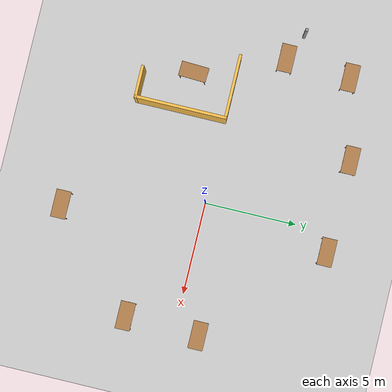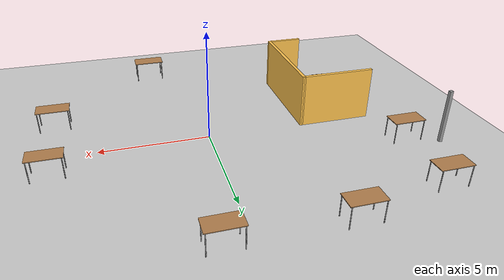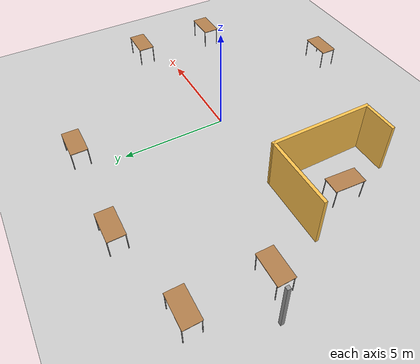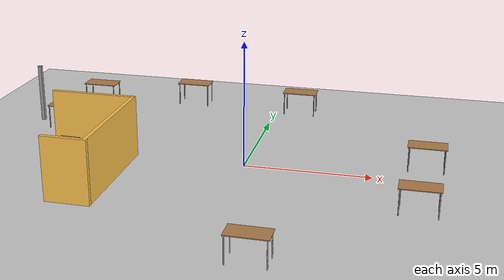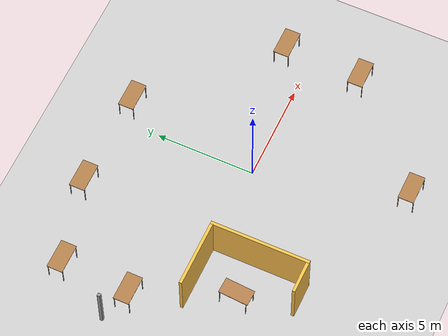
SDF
<sdf version="1.6">
 <world name="default">
  <model name="ground_plane">
   <static>1</static>
   <link name="link">
    <collision name="collision">
     <geometry><plane><normal>0 0 1</normal><size>100 100</size></plane></geometry>
     <surface>
      <contact><collide_bitmask>65535</collide_bitmask></contact>
      <friction><ode><mu>100</mu><mu2>50</mu2></ode></friction>
     </surface>
    </collision>
    <visual name="visual">
     <cast_shadows>0</cast_shadows>
     <geometry><plane><normal>0 0 1</normal><size>100 100</size></plane></geometry>
     <material>
      <script><uri>file://media/materials/scripts/gazebo.material</uri><name>Gazebo/Grey</name></script>
     </material>
    </visual>
   </link>
  </model>
  <model name="model_0">
   <pose>-7.249 -0.8735 0 0 -0 0</pose>
   <link name="Wall_66">
    <collision name="Wall_66_Collision">
     <geometry><box><size>0.15 0.15 2.5</size></box></geometry>
     <pose>0 0 1.25 0 -0 0</pose>
    </collision>
    <visual name="Wall_66_Visual">
     <pose>0 0 1.25 0 -0 0</pose>
     <geometry><box><size>0.15 0.15 2.5</size></box></geometry>
     <material>
      <script><uri>file://media/materials/scripts/gazebo.material</uri><name>Gazebo/Grey</name></script>
      <ambient>1 1 1 1</ambient>
     </material>
     <meta><layer>0</layer></meta>
    </visual>
    <pose>-2.751 3.9665 0 0 -0 0</pose>
   </link>
   <link name="Wall_67">
    <collision name="Wall_67_Collision">
     <geometry><box><size>3.5 0.15 2.5</size></box></geometry>
     <pose>0 0 1.25 0 -0 0</pose>
    </collision>
    <visual name="Wall_67_Visual">
     <pose>0 0 1.25 0 -0 0</pose>
     <geometry><box><size>3.5 0.15 2.5</size></box></geometry>
     <material>
      <script><uri>file://media/materials/scripts/gazebo.material</uri><name>Gazebo/Grey</name></script>
      <ambient>1 0.764706 0.305882 1</ambient>
     </material>
     <meta><layer>0</layer></meta>
    </visual>
    <pose>1.07582 0.883336 0 0 -0 9.8e-05</pose>
   </link>
   <link name="Wall_72">
    <collision name="Wall_72_Collision">
     <geometry><box><size>5 0.15 2.5</size></box></geometry>
     <pose>0 0 1.25 0 -0 0</pose>
    </collision>
    <visual name="Wall_72_Visual">
     <pose>0 0 1.25 0 -0 0</pose>
     <geometry><box><size>5 0.15 2.5</size></box></geometry>
     <material>
      <script><uri>file://media/materials/scripts/gazebo.material</uri><name>Gazebo/Grey</name></script>
      <ambient>1 0.764706 0.305882 1</ambient>
     </material>
     <meta><layer>0</layer></meta>
    </visual>
    <pose>2.751 -1.5415 0 0 -0 -1.5708</pose>
   </link>
   <link name="Wall_73">
    <collision name="Wall_73_Collision">
     <geometry><box><size>1.75 0.15 2.5</size></box></geometry>
     <pose>0 0 1.25 0 -0 0</pose>
    </collision>
    <visual name="Wall_73_Visual">
     <pose>0 0 1.25 0 -0 0</pose>
     <geometry><box><size>1.75 0.15 2.5</size></box></geometry>
     <material>
      <script><uri>file://media/materials/scripts/gazebo.material</uri><name>Gazebo/Grey</name></script>
      <ambient>1 0.764706 0.305882 1</ambient>
     </material>
     <meta><layer>0</layer></meta>
    </visual>
    <pose>1.951 -3.9665 0 0 -0 3.14159</pose>
   </link>
   <static>1</static>
  </model>
  <model name="model_2">
   <model name="table">
    <static>1</static>
    <link name="link">
     <collision name="surface">
      <pose>0 0 1 0 -0 0</pose>
      <geometry><box><size>1.5 0.8 0.03</size></box></geometry>
      <surface><friction><ode><mu>0.6</mu><mu2>0.6</mu2></ode></friction></surface>
     </collision>
     <visual name="visual1">
      <pose>0 0 1 0 -0 0</pose>
      <geometry><box><size>1.5 0.8 0.03</size></box></geometry>
      <material>
       <script><uri>file://media/materials/scripts/gazebo.material</uri><name>Gazebo/Wood</name></script>
      </material>
     </visual>
     <collision name="front_left_leg">
      <pose>0.68 0.38 0.5 0 -0 0</pose>
      <geometry><cylinder><radius>0.02</radius><length>1</length></cylinder></geometry>
     </collision>
     <visual name="front_left_leg">
      <pose>0.68 0.38 0.5 0 -0 0</pose>
      <geometry><cylinder><radius>0.02</radius><length>1</length></cylinder></geometry>
      <material>
       <script><uri>file://media/materials/scripts/gazebo.material</uri><name>Gazebo/Grey</name></script>
      </material>
     </visual>
     <collision name="front_right_leg">
      <pose>0.68 -0.38 0.5 0 -0 0</pose>
      <geometry><cylinder><radius>0.02</radius><length>1</length></cylinder></geometry>
     </collision>
     <visual name="front_right_leg">
      <pose>0.68 -0.38 0.5 0 -0 0</pose>
      <geometry><cylinder><radius>0.02</radius><length>1</length></cylinder></geometry>
      <material>
       <script><uri>file://media/materials/scripts/gazebo.material</uri><name>Gazebo/Grey</name></script>
      </material>
     </visual>
     <collision name="back_right_leg">
      <pose>-0.68 -0.38 0.5 0 -0 0</pose>
      <geometry><cylinder><radius>0.02</radius><length>1</length></cylinder></geometry>
     </collision>
     <visual name="back_right_leg">
      <pose>-0.68 -0.38 0.5 0 -0 0</pose>
      <geometry><cylinder><radius>0.02</radius><length>1</length></cylinder></geometry>
      <material>
       <script><uri>file://media/materials/scripts/gazebo.material</uri><name>Gazebo/Grey</name></script>
      </material>
     </visual>
     <collision name="back_left_leg">
      <pose>-0.68 0.38 0.5 0 -0 0</pose>
      <geometry><cylinder><radius>0.02</radius><length>1</length></cylinder></geometry>
     </collision>
     <visual name="back_left_leg">
      <pose>-0.68 0.38 0.5 0 -0 0</pose>
      <geometry><cylinder><radius>0.02</radius><length>1</length></cylinder></geometry>
      <material>
       <script><uri>file://media/materials/scripts/gazebo.material</uri><name>Gazebo/Grey</name></script>
      </material>
     </visual>
    </link>
    <pose>-7.17173 1.02852 0.005879 0 -0 0</pose>
   </model>
   <model name="table_clone">
    <static>1</static>
    <link name="link">
     <collision name="surface">
      <pose>0 0 1 0 -0 0</pose>
      <geometry><box><size>1.5 0.8 0.03</size></box></geometry>
      <surface><friction><ode><mu>0.6</mu><mu2>0.6</mu2></ode></friction></surface>
     </collision>
     <visual name="visual1">
      <pose>0 0 1 0 -0 0</pose>
      <geometry><box><size>1.5 0.8 0.03</size></box></geometry>
      <material>
       <script><uri>file://media/materials/scripts/gazebo.material</uri><name>Gazebo/Wood</name></script>
      </material>
     </visual>
     <collision name="front_left_leg">
      <pose>0.68 0.38 0.5 0 -0 0</pose>
      <geometry><cylinder><radius>0.02</radius><length>1</length></cylinder></geometry>
     </collision>
     <visual name="front_left_leg">
      <pose>0.68 0.38 0.5 0 -0 0</pose>
      <geometry><cylinder><radius>0.02</radius><length>1</length></cylinder></geometry>
      <material>
       <script><uri>file://media/materials/scripts/gazebo.material</uri><name>Gazebo/Grey</name></script>
      </material>
     </visual>
     <collision name="front_right_leg">
      <pose>0.68 -0.38 0.5 0 -0 0</pose>
      <geometry><cylinder><radius>0.02</radius><length>1</length></cylinder></geometry>
     </collision>
     <visual name="front_right_leg">
      <pose>0.68 -0.38 0.5 0 -0 0</pose>
      <geometry><cylinder><radius>0.02</radius><length>1</length></cylinder></geometry>
      <material>
       <script><uri>file://media/materials/scripts/gazebo.material</uri><name>Gazebo/Grey</name></script>
      </material>
     </visual>
     <collision name="back_right_leg">
      <pose>-0.68 -0.38 0.5 0 -0 0</pose>
      <geometry><cylinder><radius>0.02</radius><length>1</length></cylinder></geometry>
     </collision>
     <visual name="back_right_leg">
      <pose>-0.68 -0.38 0.5 0 -0 0</pose>
      <geometry><cylinder><radius>0.02</radius><length>1</length></cylinder></geometry>
      <material>
       <script><uri>file://media/materials/scripts/gazebo.material</uri><name>Gazebo/Grey</name></script>
      </material>
     </visual>
     <collision name="back_left_leg">
      <pose>-0.68 0.38 0.5 0 -0 0</pose>
      <geometry><cylinder><radius>0.02</radius><length>1</length></cylinder></geometry>
     </collision>
     <visual name="back_left_leg">
      <pose>-0.68 0.38 0.5 0 -0 0</pose>
      <geometry><cylinder><radius>0.02</radius><length>1</length></cylinder></geometry>
      <material>
       <script><uri>file://media/materials/scripts/gazebo.material</uri><name>Gazebo/Grey</name></script>
      </material>
     </visual>
    </link>
    <pose>-6.95127 4.56782 -0.033972 0 -0 0</pose>
   </model>
   <model name="table_clone_0">
    <static>1</static>
    <link name="link">
     <collision name="surface">
      <pose>0 0 1 0 -0 0</pose>
      <geometry><box><size>1.5 0.8 0.03</size></box></geometry>
      <surface><friction><ode><mu>0.6</mu><mu2>0.6</mu2></ode></friction></surface>
     </collision>
     <visual name="visual1">
      <pose>0 0 1 0 -0 0</pose>
      <geometry><box><size>1.5 0.8 0.03</size></box></geometry>
      <material>
       <script><uri>file://media/materials/scripts/gazebo.material</uri><name>Gazebo/Wood</name></script>
      </material>
     </visual>
     <collision name="front_left_leg">
      <pose>0.68 0.38 0.5 0 -0 0</pose>
      <geometry><cylinder><radius>0.02</radius><length>1</length></cylinder></geometry>
     </collision>
     <visual name="front_left_leg">
      <pose>0.68 0.38 0.5 0 -0 0</pose>
      <geometry><cylinder><radius>0.02</radius><length>1</length></cylinder></geometry>
      <material>
       <script><uri>file://media/materials/scripts/gazebo.material</uri><name>Gazebo/Grey</name></script>
      </material>
     </visual>
     <collision name="front_right_leg">
      <pose>0.68 -0.38 0.5 0 -0 0</pose>
      <geometry><cylinder><radius>0.02</radius><length>1</length></cylinder></geometry>
     </collision>
     <visual name="front_right_leg">
      <pose>0.68 -0.38 0.5 0 -0 0</pose>
      <geometry><cylinder><radius>0.02</radius><length>1</length></cylinder></geometry>
      <material>
       <script><uri>file://media/materials/scripts/gazebo.material</uri><name>Gazebo/Grey</name></script>
      </material>
     </visual>
     <collision name="back_right_leg">
      <pose>-0.68 -0.38 0.5 0 -0 0</pose>
      <geometry><cylinder><radius>0.02</radius><length>1</length></cylinder></geometry>
     </collision>
     <visual name="back_right_leg">
      <pose>-0.68 -0.38 0.5 0 -0 0</pose>
      <geometry><cylinder><radius>0.02</radius><length>1</length></cylinder></geometry>
      <material>
       <script><uri>file://media/materials/scripts/gazebo.material</uri><name>Gazebo/Grey</name></script>
      </material>
     </visual>
     <collision name="back_left_leg">
      <pose>-0.68 0.38 0.5 0 -0 0</pose>
      <geometry><cylinder><radius>0.02</radius><length>1</length></cylinder></geometry>
     </collision>
     <visual name="back_left_leg">
      <pose>-0.68 0.38 0.5 0 -0 0</pose>
      <geometry><cylinder><radius>0.02</radius><length>1</length></cylinder></geometry>
      <material>
       <script><uri>file://media/materials/scripts/gazebo.material</uri><name>Gazebo/Grey</name></script>
      </material>
     </visual>
    </link>
    <pose>-5.29399 -3.59772 0.095578 0.00162 -0.033332 1.52222</pose>
   </model>
   <model name="table_clone_1">
    <static>1</static>
    <link name="link">
     <collision name="surface">
      <pose>0 0 1 0 -0 0</pose>
      <geometry><box><size>1.5 0.8 0.03</size></box></geometry>
      <surface><friction><ode><mu>0.6</mu><mu2>0.6</mu2></ode></friction></surface>
     </collision>
     <visual name="visual1">
      <pose>0 0 1 0 -0 0</pose>
      <geometry><box><size>1.5 0.8 0.03</size></box></geometry>
      <material>
       <script><uri>file://media/materials/scripts/gazebo.material</uri><name>Gazebo/Wood</name></script>
      </material>
     </visual>
     <collision name="front_left_leg">
      <pose>0.68 0.38 0.5 0 -0 0</pose>
      <geometry><cylinder><radius>0.02</radius><length>1</length></cylinder></geometry>
     </collision>
     <visual name="front_left_leg">
      <pose>0.68 0.38 0.5 0 -0 0</pose>
      <geometry><cylinder><radius>0.02</radius><length>1</length></cylinder></geometry>
      <material>
       <script><uri>file://media/materials/scripts/gazebo.material</uri><name>Gazebo/Grey</name></script>
      </material>
     </visual>
     <collision name="front_right_leg">
      <pose>0.68 -0.38 0.5 0 -0 0</pose>
      <geometry><cylinder><radius>0.02</radius><length>1</length></cylinder></geometry>
     </collision>
     <visual name="front_right_leg">
      <pose>0.68 -0.38 0.5 0 -0 0</pose>
      <geometry><cylinder><radius>0.02</radius><length>1</length></cylinder></geometry>
      <material>
       <script><uri>file://media/materials/scripts/gazebo.material</uri><name>Gazebo/Grey</name></script>
      </material>
     </visual>
     <collision name="back_right_leg">
      <pose>-0.68 -0.38 0.5 0 -0 0</pose>
      <geometry><cylinder><radius>0.02</radius><length>1</length></cylinder></geometry>
     </collision>
     <visual name="back_right_leg">
      <pose>-0.68 -0.38 0.5 0 -0 0</pose>
      <geometry><cylinder><radius>0.02</radius><length>1</length></cylinder></geometry>
      <material>
       <script><uri>file://media/materials/scripts/gazebo.material</uri><name>Gazebo/Grey</name></script>
      </material>
     </visual>
     <collision name="back_left_leg">
      <pose>-0.68 0.38 0.5 0 -0 0</pose>
      <geometry><cylinder><radius>0.02</radius><length>1</length></cylinder></geometry>
     </collision>
     <visual name="back_left_leg">
      <pose>-0.68 0.38 0.5 0 -0 0</pose>
      <geometry><cylinder><radius>0.02</radius><length>1</length></cylinder></geometry>
      <material>
       <script><uri>file://media/materials/scripts/gazebo.material</uri><name>Gazebo/Grey</name></script>
      </material>
     </visual>
    </link>
    <pose>8.16305 -4.11748 0.005879 0 -0 0</pose>
   </model>
   <model name="table_clone_1_clone">
    <static>1</static>
    <link name="link">
     <collision name="surface">
      <pose>0 0 1 0 -0 0</pose>
      <geometry><box><size>1.5 0.8 0.03</size></box></geometry>
      <surface><friction><ode><mu>0.6</mu><mu2>0.6</mu2></ode></friction></surface>
     </collision>
     <visual name="visual1">
      <pose>0 0 1 0 -0 0</pose>
      <geometry><box><size>1.5 0.8 0.03</size></box></geometry>
      <material>
       <script><uri>file://media/materials/scripts/gazebo.material</uri><name>Gazebo/Wood</name></script>
      </material>
     </visual>
     <collision name="front_left_leg">
      <pose>0.68 0.38 0.5 0 -0 0</pose>
      <geometry><cylinder><radius>0.02</radius><length>1</length></cylinder></geometry>
     </collision>
     <visual name="front_left_leg">
      <pose>0.68 0.38 0.5 0 -0 0</pose>
      <geometry><cylinder><radius>0.02</radius><length>1</length></cylinder></geometry>
      <material>
       <script><uri>file://media/materials/scripts/gazebo.material</uri><name>Gazebo/Grey</name></script>
      </material>
     </visual>
     <collision name="front_right_leg">
      <pose>0.68 -0.38 0.5 0 -0 0</pose>
      <geometry><cylinder><radius>0.02</radius><length>1</length></cylinder></geometry>
     </collision>
     <visual name="front_right_leg">
      <pose>0.68 -0.38 0.5 0 -0 0</pose>
      <geometry><cylinder><radius>0.02</radius><length>1</length></cylinder></geometry>
      <material>
       <script><uri>file://media/materials/scripts/gazebo.material</uri><name>Gazebo/Grey</name></script>
      </material>
     </visual>
     <collision name="back_right_leg">
      <pose>-0.68 -0.38 0.5 0 -0 0</pose>
      <geometry><cylinder><radius>0.02</radius><length>1</length></cylinder></geometry>
     </collision>
     <visual name="back_right_leg">
      <pose>-0.68 -0.38 0.5 0 -0 0</pose>
      <geometry><cylinder><radius>0.02</radius><length>1</length></cylinder></geometry>
      <material>
       <script><uri>file://media/materials/scripts/gazebo.material</uri><name>Gazebo/Grey</name></script>
      </material>
     </visual>
     <collision name="back_left_leg">
      <pose>-0.68 0.38 0.5 0 -0 0</pose>
      <geometry><cylinder><radius>0.02</radius><length>1</length></cylinder></geometry>
     </collision>
     <visual name="back_left_leg">
      <pose>-0.68 0.38 0.5 0 -0 0</pose>
      <geometry><cylinder><radius>0.02</radius><length>1</length></cylinder></geometry>
      <material>
       <script><uri>file://media/materials/scripts/gazebo.material</uri><name>Gazebo/Grey</name></script>
      </material>
     </visual>
    </link>
    <pose>8.28303 -0.127677 -0.007262 0 -0 0</pose>
   </model>
   <model name="table_clone_1_clone_0">
    <static>1</static>
    <link name="link">
     <collision name="surface">
      <pose>0 0 1 0 -0 0</pose>
      <geometry><box><size>1.5 0.8 0.03</size></box></geometry>
      <surface><friction><ode><mu>0.6</mu><mu2>0.6</mu2></ode></friction></surface>
     </collision>
     <visual name="visual1">
      <pose>0 0 1 0 -0 0</pose>
      <geometry><box><size>1.5 0.8 0.03</size></box></geometry>
      <material>
       <script><uri>file://media/materials/scripts/gazebo.material</uri><name>Gazebo/Wood</name></script>
      </material>
     </visual>
     <collision name="front_left_leg">
      <pose>0.68 0.38 0.5 0 -0 0</pose>
      <geometry><cylinder><radius>0.02</radius><length>1</length></cylinder></geometry>
     </collision>
     <visual name="front_left_leg">
      <pose>0.68 0.38 0.5 0 -0 0</pose>
      <geometry><cylinder><radius>0.02</radius><length>1</length></cylinder></geometry>
      <material>
       <script><uri>file://media/materials/scripts/gazebo.material</uri><name>Gazebo/Grey</name></script>
      </material>
     </visual>
     <collision name="front_right_leg">
      <pose>0.68 -0.38 0.5 0 -0 0</pose>
      <geometry><cylinder><radius>0.02</radius><length>1</length></cylinder></geometry>
     </collision>
     <visual name="front_right_leg">
      <pose>0.68 -0.38 0.5 0 -0 0</pose>
      <geometry><cylinder><radius>0.02</radius><length>1</length></cylinder></geometry>
      <material>
       <script><uri>file://media/materials/scripts/gazebo.material</uri><name>Gazebo/Grey</name></script>
      </material>
     </visual>
     <collision name="back_right_leg">
      <pose>-0.68 -0.38 0.5 0 -0 0</pose>
      <geometry><cylinder><radius>0.02</radius><length>1</length></cylinder></geometry>
     </collision>
     <visual name="back_right_leg">
      <pose>-0.68 -0.38 0.5 0 -0 0</pose>
      <geometry><cylinder><radius>0.02</radius><length>1</length></cylinder></geometry>
      <material>
       <script><uri>file://media/materials/scripts/gazebo.material</uri><name>Gazebo/Grey</name></script>
      </material>
     </visual>
     <collision name="back_left_leg">
      <pose>-0.68 0.38 0.5 0 -0 0</pose>
      <geometry><cylinder><radius>0.02</radius><length>1</length></cylinder></geometry>
     </collision>
     <visual name="back_left_leg">
      <pose>-0.68 0.38 0.5 0 -0 0</pose>
      <geometry><cylinder><radius>0.02</radius><length>1</length></cylinder></geometry>
      <material>
       <script><uri>file://media/materials/scripts/gazebo.material</uri><name>Gazebo/Grey</name></script>
      </material>
     </visual>
    </link>
    <pose>2.40207 5.49447 -0.059796 0 -0 0</pose>
   </model>
   <model name="table_clone_1_clone_1">
    <static>1</static>
    <link name="link">
     <collision name="surface">
      <pose>0 0 1 0 -0 0</pose>
      <geometry><box><size>1.5 0.8 0.03</size></box></geometry>
      <surface><friction><ode><mu>0.6</mu><mu2>0.6</mu2></ode></friction></surface>
     </collision>
     <visual name="visual1">
      <pose>0 0 1 0 -0 0</pose>
      <geometry><box><size>1.5 0.8 0.03</size></box></geometry>
      <material>
       <script><uri>file://media/materials/scripts/gazebo.material</uri><name>Gazebo/Wood</name></script>
      </material>
     </visual>
     <collision name="front_left_leg">
      <pose>0.68 0.38 0.5 0 -0 0</pose>
      <geometry><cylinder><radius>0.02</radius><length>1</length></cylinder></geometry>
     </collision>
     <visual name="front_left_leg">
      <pose>0.68 0.38 0.5 0 -0 0</pose>
      <geometry><cylinder><radius>0.02</radius><length>1</length></cylinder></geometry>
      <material>
       <script><uri>file://media/materials/scripts/gazebo.material</uri><name>Gazebo/Grey</name></script>
      </material>
     </visual>
     <collision name="front_right_leg">
      <pose>0.68 -0.38 0.5 0 -0 0</pose>
      <geometry><cylinder><radius>0.02</radius><length>1</length></cylinder></geometry>
     </collision>
     <visual name="front_right_leg">
      <pose>0.68 -0.38 0.5 0 -0 0</pose>
      <geometry><cylinder><radius>0.02</radius><length>1</length></cylinder></geometry>
      <material>
       <script><uri>file://media/materials/scripts/gazebo.material</uri><name>Gazebo/Grey</name></script>
      </material>
     </visual>
     <collision name="back_right_leg">
      <pose>-0.68 -0.38 0.5 0 -0 0</pose>
      <geometry><cylinder><radius>0.02</radius><length>1</length></cylinder></geometry>
     </collision>
     <visual name="back_right_leg">
      <pose>-0.68 -0.38 0.5 0 -0 0</pose>
      <geometry><cylinder><radius>0.02</radius><length>1</length></cylinder></geometry>
      <material>
       <script><uri>file://media/materials/scripts/gazebo.material</uri><name>Gazebo/Grey</name></script>
      </material>
     </visual>
     <collision name="back_left_leg">
      <pose>-0.68 0.38 0.5 0 -0 0</pose>
      <geometry><cylinder><radius>0.02</radius><length>1</length></cylinder></geometry>
     </collision>
     <visual name="back_left_leg">
      <pose>-0.68 0.38 0.5 0 -0 0</pose>
      <geometry><cylinder><radius>0.02</radius><length>1</length></cylinder></geometry>
      <material>
       <script><uri>file://media/materials/scripts/gazebo.material</uri><name>Gazebo/Grey</name></script>
      </material>
     </visual>
    </link>
    <pose>-2.64428 5.59611 -0.012185 0 -0 0</pose>
   </model>
   <model name="table_clone_1_clone_2">
    <static>1</static>
    <link name="link">
     <collision name="surface">
      <pose>0 0 1 0 -0 0</pose>
      <geometry><box><size>1.5 0.8 0.03</size></box></geometry>
      <surface><friction><ode><mu>0.6</mu><mu2>0.6</mu2></ode></friction></surface>
     </collision>
     <visual name="visual1">
      <pose>0 0 1 0 -0 0</pose>
      <geometry><box><size>1.5 0.8 0.03</size></box></geometry>
      <material>
       <script><uri>file://media/materials/scripts/gazebo.material</uri><name>Gazebo/Wood</name></script>
      </material>
     </visual>
     <collision name="front_left_leg">
      <pose>0.68 0.38 0.5 0 -0 0</pose>
      <geometry><cylinder><radius>0.02</radius><length>1</length></cylinder></geometry>
     </collision>
     <visual name="front_left_leg">
      <pose>0.68 0.38 0.5 0 -0 0</pose>
      <geometry><cylinder><radius>0.02</radius><length>1</length></cylinder></geometry>
      <material>
       <script><uri>file://media/materials/scripts/gazebo.material</uri><name>Gazebo/Grey</name></script>
      </material>
     </visual>
     <collision name="front_right_leg">
      <pose>0.68 -0.38 0.5 0 -0 0</pose>
      <geometry><cylinder><radius>0.02</radius><length>1</length></cylinder></geometry>
     </collision>
     <visual name="front_right_leg">
      <pose>0.68 -0.38 0.5 0 -0 0</pose>
      <geometry><cylinder><radius>0.02</radius><length>1</length></cylinder></geometry>
      <material>
       <script><uri>file://media/materials/scripts/gazebo.material</uri><name>Gazebo/Grey</name></script>
      </material>
     </visual>
     <collision name="back_right_leg">
      <pose>-0.68 -0.38 0.5 0 -0 0</pose>
      <geometry><cylinder><radius>0.02</radius><length>1</length></cylinder></geometry>
     </collision>
     <visual name="back_right_leg">
      <pose>-0.68 -0.38 0.5 0 -0 0</pose>
      <geometry><cylinder><radius>0.02</radius><length>1</length></cylinder></geometry>
      <material>
       <script><uri>file://media/materials/scripts/gazebo.material</uri><name>Gazebo/Grey</name></script>
      </material>
     </visual>
     <collision name="back_left_leg">
      <pose>-0.68 0.38 0.5 0 -0 0</pose>
      <geometry><cylinder><radius>0.02</radius><length>1</length></cylinder></geometry>
     </collision>
     <visual name="back_left_leg">
      <pose>-0.68 0.38 0.5 0 -0 0</pose>
      <geometry><cylinder><radius>0.02</radius><length>1</length></cylinder></geometry>
      <material>
       <script><uri>file://media/materials/scripts/gazebo.material</uri><name>Gazebo/Grey</name></script>
      </material>
     </visual>
    </link>
    <pose>3.21313 -8.84404 0.005879 0 -0 0</pose>
   </model>
   <static>0</static>
   <pose>-1.33832 1.41163 0.033972 0 -0 0</pose>
  </model>
 </world>
</sdf>
